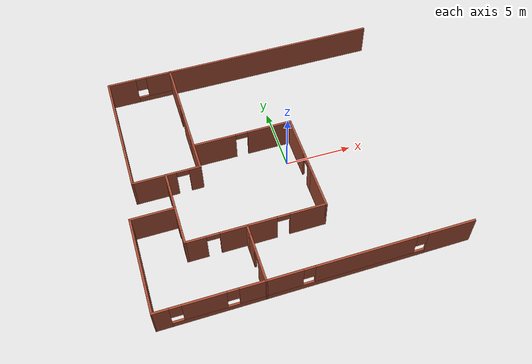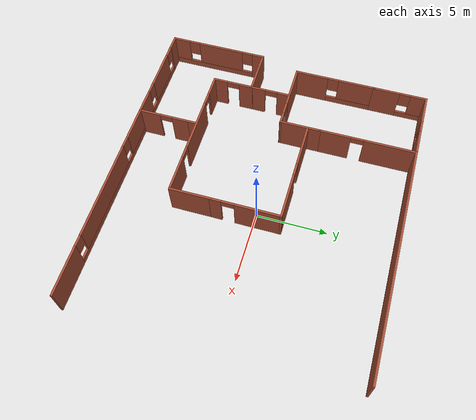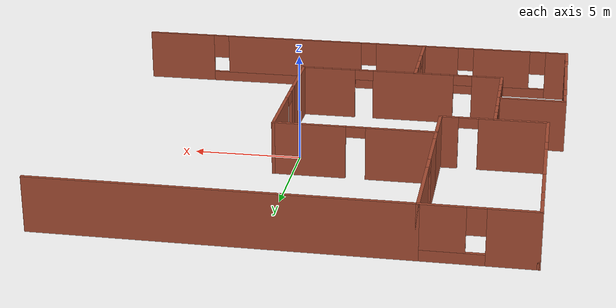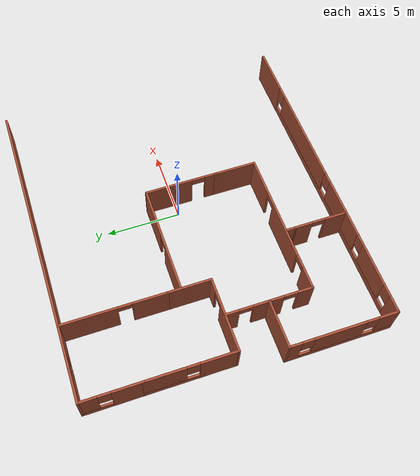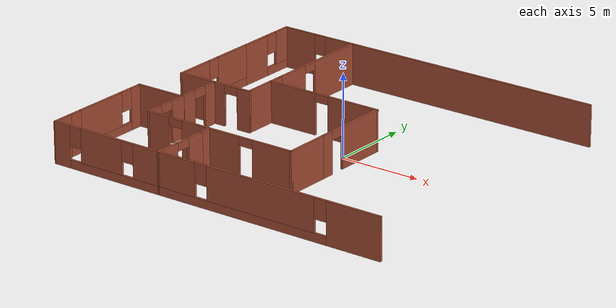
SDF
<sdf version="1.6">
 <model name="office">
  <pose>3.86148 -0.195271 0 0 -0 0</pose>
  <link name="Wall_0">
   <pose>-12.8016 9.8293 0 0 -0 1.2e-05</pose>
   <visual name="Wall_0_Visual_0">
    <pose>-1.40419 0 1.25 0 -0 0</pose>
    <geometry><box><size>2.19162 0.15 2.5</size></box></geometry>
    <material>
     <script><uri>file://media/materials/scripts/gazebo.material</uri><name>Gazebo/Bricks</name></script>
     <ambient>1 1 1 1</ambient>
    </material>
    <meta><layer>0</layer></meta>
   </visual>
   <collision name="Wall_0_Collision_0">
    <geometry><box><size>2.19162 0.15 2.5</size></box></geometry>
    <pose>-1.40419 0 1.25 0 -0 0</pose>
   </collision>
   <visual name="Wall_0_Visual_1">
    <pose>1.09581 0 0.25 0 -0 0</pose>
    <geometry><box><size>2.80838 0.15 0.5</size></box></geometry>
    <material>
     <script><uri>file://media/materials/scripts/gazebo.material</uri><name>Gazebo/Bricks</name></script>
     <ambient>1 1 1 1</ambient>
    </material>
    <meta><layer>0</layer></meta>
   </visual>
   <collision name="Wall_0_Collision_1">
    <geometry><box><size>2.80838 0.15 0.5</size></box></geometry>
    <pose>1.09581 0 0.25 0 -0 0</pose>
   </collision>
   <visual name="Wall_0_Visual_2">
    <pose>1.49581 0 1.5 0 -0 0</pose>
    <geometry><box><size>2.00839 0.15 2</size></box></geometry>
    <material>
     <script><uri>file://media/materials/scripts/gazebo.material</uri><name>Gazebo/Bricks</name></script>
     <ambient>1 1 1 1</ambient>
    </material>
    <meta><layer>0</layer></meta>
   </visual>
   <collision name="Wall_0_Collision_2">
    <geometry><box><size>2.00839 0.15 2</size></box></geometry>
    <pose>1.49581 0 1.5 0 -0 0</pose>
   </collision>
   <visual name="Wall_0_Visual_3">
    <pose>0.091615 0 1.9 0 -0 0</pose>
    <geometry><box><size>0.8 0.15 1.2</size></box></geometry>
    <material>
     <script><uri>file://media/materials/scripts/gazebo.material</uri><name>Gazebo/Bricks</name></script>
     <ambient>1 1 1 1</ambient>
    </material>
    <meta><layer>0</layer></meta>
   </visual>
   <collision name="Wall_0_Collision_3">
    <geometry><box><size>0.8 0.15 1.2</size></box></geometry>
    <pose>0.091615 0 1.9 0 -0 0</pose>
   </collision>
  </link>
  <link name="Wall_1">
   <pose>-10.3767 6.40433 0 0 0 -1.5708</pose>
   <visual name="Wall_1_Visual_0">
    <pose>-1.61827 0 1.25 0 -0 0</pose>
    <geometry><box><size>3.76346 0.15 2.5</size></box></geometry>
    <material>
     <script><uri>file://media/materials/scripts/gazebo.material</uri><name>Gazebo/Bricks</name></script>
     <ambient>0 0 1 1</ambient>
    </material>
    <meta><layer>0</layer></meta>
   </visual>
   <collision name="Wall_1_Collision_0">
    <geometry><box><size>3.76346 0.15 2.5</size></box></geometry>
    <pose>-1.61827 0 1.25 0 -0 0</pose>
   </collision>
   <visual name="Wall_1_Visual_1">
    <pose>2.33173 0 1.25 0 -0 0</pose>
    <geometry><box><size>2.33654 0.15 2.5</size></box></geometry>
    <material>
     <script><uri>file://media/materials/scripts/gazebo.material</uri><name>Gazebo/Bricks</name></script>
     <ambient>0 0 1 1</ambient>
    </material>
    <meta><layer>0</layer></meta>
   </visual>
   <collision name="Wall_1_Collision_1">
    <geometry><box><size>2.33654 0.15 2.5</size></box></geometry>
    <pose>2.33173 0 1.25 0 -0 0</pose>
   </collision>
   <visual name="Wall_1_Visual_2">
    <pose>0.713457 0 2.25 0 -0 0</pose>
    <geometry><box><size>0.9 0.15 0.5</size></box></geometry>
    <material>
     <script><uri>file://media/materials/scripts/gazebo.material</uri><name>Gazebo/Bricks</name></script>
     <ambient>0 0 1 1</ambient>
    </material>
    <meta><layer>0</layer></meta>
   </visual>
   <collision name="Wall_1_Collision_2">
    <geometry><box><size>0.9 0.15 0.5</size></box></geometry>
    <pose>0.713457 0 2.25 0 -0 0</pose>
   </collision>
  </link>
  <link name="Wall_10">
   <collision name="Wall_10_Collision">
    <geometry><box><size>3 0.15 2.5</size></box></geometry>
    <pose>0 0 1.25 0 -0 0</pose>
   </collision>
   <visual name="Wall_10_Visual">
    <pose>0 0 1.25 0 -0 0</pose>
    <geometry><box><size>3 0.15 2.5</size></box></geometry>
    <material>
     <script><uri>file://media/materials/scripts/gazebo.material</uri><name>Gazebo/Bricks</name></script>
     <ambient>0 0 1 1</ambient>
    </material>
    <meta><layer>0</layer></meta>
   </visual>
   <pose>-3.00328 -4.16052 0 0 -0 1.5708</pose>
  </link>
  <link name="Wall_11">
   <pose>-3.00328 -0.310524 0 0 -0 1.5708</pose>
   <visual name="Wall_11_Visual_0">
    <pose>-2.09105 0 1.25 0 -0 0</pose>
    <geometry><box><size>0.817909 0.15 2.5</size></box></geometry>
    <material>
     <script><uri>file://media/materials/scripts/gazebo.material</uri><name>Gazebo/Bricks</name></script>
     <ambient>0 0 1 1</ambient>
    </material>
    <meta><layer>0</layer></meta>
   </visual>
   <collision name="Wall_11_Collision_0">
    <geometry><box><size>0.817909 0.15 2.5</size></box></geometry>
    <pose>-2.09105 0 1.25 0 -0 0</pose>
   </collision>
   <visual name="Wall_11_Visual_1">
    <pose>0.858954 0 1.25 0 -0 0</pose>
    <geometry><box><size>3.28209 0.15 2.5</size></box></geometry>
    <material>
     <script><uri>file://media/materials/scripts/gazebo.material</uri><name>Gazebo/Bricks</name></script>
     <ambient>0 0 1 1</ambient>
    </material>
    <meta><layer>0</layer></meta>
   </visual>
   <collision name="Wall_11_Collision_1">
    <geometry><box><size>3.28209 0.15 2.5</size></box></geometry>
    <pose>0.858954 0 1.25 0 -0 0</pose>
   </collision>
   <visual name="Wall_11_Visual_2">
    <pose>-1.23209 0 2.25 0 -0 0</pose>
    <geometry><box><size>0.9 0.15 0.5</size></box></geometry>
    <material>
     <script><uri>file://media/materials/scripts/gazebo.material</uri><name>Gazebo/Bricks</name></script>
     <ambient>0 0 1 1</ambient>
    </material>
    <meta><layer>0</layer></meta>
   </visual>
   <collision name="Wall_11_Collision_2">
    <geometry><box><size>0.9 0.15 0.5</size></box></geometry>
    <pose>-1.23209 0 2.25 0 -0 0</pose>
   </collision>
  </link>
  <link name="Wall_12">
   <pose>-6.67828 2.11448 0 0 -0 3.14159</pose>
   <visual name="Wall_12_Visual_0">
    <pose>-2.05802 0 1.25 0 -0 0</pose>
    <geometry><box><size>3.38397 0.15 2.5</size></box></geometry>
    <material>
     <script><uri>file://media/materials/scripts/gazebo.material</uri><name>Gazebo/Bricks</name></script>
     <ambient>0 0 1 1</ambient>
    </material>
    <meta><layer>0</layer></meta>
   </visual>
   <collision name="Wall_12_Collision_0">
    <geometry><box><size>3.38397 0.15 2.5</size></box></geometry>
    <pose>-2.05802 0 1.25 0 -0 0</pose>
   </collision>
   <visual name="Wall_12_Visual_1">
    <pose>2.14199 0 1.25 0 -0 0</pose>
    <geometry><box><size>3.21603 0.15 2.5</size></box></geometry>
    <material>
     <script><uri>file://media/materials/scripts/gazebo.material</uri><name>Gazebo/Bricks</name></script>
     <ambient>0 0 1 1</ambient>
    </material>
    <meta><layer>0</layer></meta>
   </visual>
   <collision name="Wall_12_Collision_1">
    <geometry><box><size>3.21603 0.15 2.5</size></box></geometry>
    <pose>2.14199 0 1.25 0 -0 0</pose>
   </collision>
   <visual name="Wall_12_Visual_2">
    <pose>0.083969 0 2.25 0 -0 0</pose>
    <geometry><box><size>0.9 0.15 0.5</size></box></geometry>
    <material>
     <script><uri>file://media/materials/scripts/gazebo.material</uri><name>Gazebo/Bricks</name></script>
     <ambient>0 0 1 1</ambient>
    </material>
    <meta><layer>0</layer></meta>
   </visual>
   <collision name="Wall_12_Collision_2">
    <geometry><box><size>0.9 0.15 0.5</size></box></geometry>
    <pose>0.083969 0 2.25 0 -0 0</pose>
   </collision>
  </link>
  <link name="Wall_14">
   <collision name="Wall_14_Collision">
    <geometry><box><size>16.5 0.15 2.5</size></box></geometry>
    <pose>0 0 1.25 0 -0 0</pose>
   </collision>
   <visual name="Wall_14_Visual">
    <pose>0 0 1.25 0 -0 0</pose>
    <geometry><box><size>16.5 0.15 2.5</size></box></geometry>
    <material>
     <script><uri>file://media/materials/scripts/gazebo.material</uri><name>Gazebo/Bricks</name></script>
     <ambient>1 1 1 1</ambient>
    </material>
    <meta><layer>0</layer></meta>
   </visual>
   <pose>-2.20168 9.82933 0 0 -0 0</pose>
  </link>
  <link name="Wall_2">
   <collision name="Wall_2_Collision">
    <geometry><box><size>3 0.15 2.5</size></box></geometry>
    <pose>0 0 1.25 0 -0 0</pose>
   </collision>
   <visual name="Wall_2_Visual">
    <pose>0 0 1.25 0 -0 0</pose>
    <geometry><box><size>3 0.15 2.5</size></box></geometry>
    <material>
     <script><uri>file://media/materials/scripts/gazebo.material</uri><name>Gazebo/Bricks</name></script>
     <ambient>0 0 1 1</ambient>
    </material>
    <meta><layer>0</layer></meta>
   </visual>
   <pose>-10.3766 1.5543 0 0 0 -1.57073</pose>
  </link>
  <link name="Wall_24">
   <pose>-1.30648 -9.85573 0 0 -0 3.14159</pose>
   <visual name="Wall_24_Visual_0">
    <pose>-5.65269 0 1.25 0 -0 0</pose>
    <geometry><box><size>3.44462 0.15 2.5</size></box></geometry>
    <material>
     <script><uri>file://media/materials/scripts/gazebo.material</uri><name>Gazebo/Bricks</name></script>
     <ambient>1 1 1 1</ambient>
    </material>
    <meta><layer>0</layer></meta>
   </visual>
   <collision name="Wall_24_Collision_0">
    <geometry><box><size>3.44462 0.15 2.5</size></box></geometry>
    <pose>-5.65269 0 1.25 0 -0 0</pose>
   </collision>
   <visual name="Wall_24_Visual_1">
    <pose>1.72231 0 0.25 0 -0 0</pose>
    <geometry><box><size>11.3054 0.15 0.5</size></box></geometry>
    <material>
     <script><uri>file://media/materials/scripts/gazebo.material</uri><name>Gazebo/Bricks</name></script>
     <ambient>1 1 1 1</ambient>
    </material>
    <meta><layer>0</layer></meta>
   </visual>
   <collision name="Wall_24_Collision_1">
    <geometry><box><size>11.3054 0.15 0.5</size></box></geometry>
    <pose>1.72231 0 0.25 0 -0 0</pose>
   </collision>
   <visual name="Wall_24_Visual_2">
    <pose>0.432018 0 1.5 0 -0 0</pose>
    <geometry><box><size>7.12479 0.15 2</size></box></geometry>
    <material>
     <script><uri>file://media/materials/scripts/gazebo.material</uri><name>Gazebo/Bricks</name></script>
     <ambient>1 1 1 1</ambient>
    </material>
    <meta><layer>0</layer></meta>
   </visual>
   <collision name="Wall_24_Collision_2">
    <geometry><box><size>7.12479 0.15 2</size></box></geometry>
    <pose>0.432018 0 1.5 0 -0 0</pose>
   </collision>
   <visual name="Wall_24_Visual_3">
    <pose>6.08471 0 1.5 0 -0 0</pose>
    <geometry><box><size>2.58059 0.15 2</size></box></geometry>
    <material>
     <script><uri>file://media/materials/scripts/gazebo.material</uri><name>Gazebo/Bricks</name></script>
     <ambient>1 1 1 1</ambient>
    </material>
    <meta><layer>0</layer></meta>
   </visual>
   <collision name="Wall_24_Collision_3">
    <geometry><box><size>2.58059 0.15 2</size></box></geometry>
    <pose>6.08471 0 1.5 0 -0 0</pose>
   </collision>
   <visual name="Wall_24_Visual_4">
    <pose>-3.53038 0 1.9 0 -0 0</pose>
    <geometry><box><size>0.8 0.15 1.2</size></box></geometry>
    <material>
     <script><uri>file://media/materials/scripts/gazebo.material</uri><name>Gazebo/Bricks</name></script>
     <ambient>1 1 1 1</ambient>
    </material>
    <meta><layer>0</layer></meta>
   </visual>
   <collision name="Wall_24_Collision_4">
    <geometry><box><size>0.8 0.15 1.2</size></box></geometry>
    <pose>-3.53038 0 1.9 0 -0 0</pose>
   </collision>
   <visual name="Wall_24_Visual_5">
    <pose>4.39441 0 1.9 0 -0 0</pose>
    <geometry><box><size>0.8 0.15 1.2</size></box></geometry>
    <material>
     <script><uri>file://media/materials/scripts/gazebo.material</uri><name>Gazebo/Bricks</name></script>
     <ambient>1 1 1 1</ambient>
    </material>
    <meta><layer>0</layer></meta>
   </visual>
   <collision name="Wall_24_Collision_5">
    <geometry><box><size>0.8 0.15 1.2</size></box></geometry>
    <pose>4.39441 0 1.9 0 -0 0</pose>
   </collision>
  </link>
  <link name="Wall_25">
   <pose>-8.60667 -8.05568 0 0 -0 1.5709</pose>
   <visual name="Wall_25_Visual_0">
    <pose>-1.07228 0 1.25 0 -0 0</pose>
    <geometry><box><size>1.60545 0.15 2.5</size></box></geometry>
    <material>
     <script><uri>file://media/materials/scripts/gazebo.material</uri><name>Gazebo/Bricks</name></script>
     <ambient>1 1 1 1</ambient>
    </material>
    <meta><layer>0</layer></meta>
   </visual>
   <collision name="Wall_25_Collision_0">
    <geometry><box><size>1.60545 0.15 2.5</size></box></geometry>
    <pose>-1.07228 0 1.25 0 -0 0</pose>
   </collision>
   <visual name="Wall_25_Visual_1">
    <pose>1.25273 0 1.25 0 -0 0</pose>
    <geometry><box><size>1.24455 0.15 2.5</size></box></geometry>
    <material>
     <script><uri>file://media/materials/scripts/gazebo.material</uri><name>Gazebo/Bricks</name></script>
     <ambient>1 1 1 1</ambient>
    </material>
    <meta><layer>0</layer></meta>
   </visual>
   <collision name="Wall_25_Collision_1">
    <geometry><box><size>1.24455 0.15 2.5</size></box></geometry>
    <pose>1.25273 0 1.25 0 -0 0</pose>
   </collision>
   <visual name="Wall_25_Visual_2">
    <pose>0.18045 0 2.25 0 -0 0</pose>
    <geometry><box><size>0.9 0.15 0.5</size></box></geometry>
    <material>
     <script><uri>file://media/materials/scripts/gazebo.material</uri><name>Gazebo/Bricks</name></script>
     <ambient>1 1 1 1</ambient>
    </material>
    <meta><layer>0</layer></meta>
   </visual>
   <collision name="Wall_25_Collision_2">
    <geometry><box><size>0.9 0.15 0.5</size></box></geometry>
    <pose>0.18045 0 2.25 0 -0 0</pose>
   </collision>
  </link>
  <link name="Wall_26">
   <collision name="Wall_26_Collision">
    <geometry><box><size>0.75 0.15 2.5</size></box></geometry>
    <pose>0 0 1.25 0 -0 0</pose>
   </collision>
   <visual name="Wall_26_Visual">
    <pose>0 0 1.25 0 -0 0</pose>
    <geometry><box><size>0.75 0.15 2.5</size></box></geometry>
    <material>
     <script><uri>file://media/materials/scripts/gazebo.material</uri><name>Gazebo/Bricks</name></script>
     <ambient>1 1 1 1</ambient>
    </material>
    <meta><layer>0</layer></meta>
   </visual>
   <pose>-8.60686 -5.95564 0 0 -0 1.5708</pose>
  </link>
  <link name="Wall_28">
   <collision name="Wall_28_Collision">
    <geometry><box><size>3.25 0.15 2.5</size></box></geometry>
    <pose>0 0 1.25 0 -0 0</pose>
   </collision>
   <visual name="Wall_28_Visual">
    <pose>0 0 1.25 0 -0 0</pose>
    <geometry><box><size>3.25 0.15 2.5</size></box></geometry>
    <material>
     <script><uri>file://media/materials/scripts/gazebo.material</uri><name>Gazebo/Bricks</name></script>
     <ambient>1 1 1 1</ambient>
    </material>
    <meta><layer>0</layer></meta>
   </visual>
   <pose>-14.4035 -2.73573 0 0 -0 3.14159</pose>
  </link>
  <link name="Wall_29">
   <pose>-15.9535 -6.28573 0 0 0 -1.5708</pose>
   <visual name="Wall_29_Visual_0">
    <pose>-3.17286 0 1.25 0 -0 0</pose>
    <geometry><box><size>0.904269 0.15 2.5</size></box></geometry>
    <material>
     <script><uri>file://media/materials/scripts/gazebo.material</uri><name>Gazebo/Bricks</name></script>
     <ambient>1 1 1 1</ambient>
    </material>
    <meta><layer>0</layer></meta>
   </visual>
   <collision name="Wall_29_Collision_0">
    <geometry><box><size>0.904269 0.15 2.5</size></box></geometry>
    <pose>-3.17286 0 1.25 0 -0 0</pose>
   </collision>
   <visual name="Wall_29_Visual_1">
    <pose>0.452135 0 0.25 0 -0 0</pose>
    <geometry><box><size>6.34573 0.15 0.5</size></box></geometry>
    <material>
     <script><uri>file://media/materials/scripts/gazebo.material</uri><name>Gazebo/Bricks</name></script>
     <ambient>1 1 1 1</ambient>
    </material>
    <meta><layer>0</layer></meta>
   </visual>
   <collision name="Wall_29_Collision_1">
    <geometry><box><size>6.34573 0.15 0.5</size></box></geometry>
    <pose>0.452135 0 0.25 0 -0 0</pose>
   </collision>
   <visual name="Wall_29_Visual_2">
    <pose>-0.206015 0 1.5 0 -0 0</pose>
    <geometry><box><size>3.42943 0.15 2</size></box></geometry>
    <material>
     <script><uri>file://media/materials/scripts/gazebo.material</uri><name>Gazebo/Bricks</name></script>
     <ambient>1 1 1 1</ambient>
    </material>
    <meta><layer>0</layer></meta>
   </visual>
   <collision name="Wall_29_Collision_2">
    <geometry><box><size>3.42943 0.15 2</size></box></geometry>
    <pose>-0.206015 0 1.5 0 -0 0</pose>
   </collision>
   <visual name="Wall_29_Visual_3">
    <pose>2.96685 0 1.5 0 -0 0</pose>
    <geometry><box><size>1.3163 0.15 2</size></box></geometry>
    <material>
     <script><uri>file://media/materials/scripts/gazebo.material</uri><name>Gazebo/Bricks</name></script>
     <ambient>1 1 1 1</ambient>
    </material>
    <meta><layer>0</layer></meta>
   </visual>
   <collision name="Wall_29_Collision_3">
    <geometry><box><size>1.3163 0.15 2</size></box></geometry>
    <pose>2.96685 0 1.5 0 -0 0</pose>
   </collision>
   <visual name="Wall_29_Visual_4">
    <pose>-2.32073 0 1.9 0 -0 0</pose>
    <geometry><box><size>0.8 0.15 1.2</size></box></geometry>
    <material>
     <script><uri>file://media/materials/scripts/gazebo.material</uri><name>Gazebo/Bricks</name></script>
     <ambient>1 1 1 1</ambient>
    </material>
    <meta><layer>0</layer></meta>
   </visual>
   <collision name="Wall_29_Collision_4">
    <geometry><box><size>0.8 0.15 1.2</size></box></geometry>
    <pose>-2.32073 0 1.9 0 -0 0</pose>
   </collision>
   <visual name="Wall_29_Visual_5">
    <pose>1.9087 0 1.9 0 -0 0</pose>
    <geometry><box><size>0.8 0.15 1.2</size></box></geometry>
    <material>
     <script><uri>file://media/materials/scripts/gazebo.material</uri><name>Gazebo/Bricks</name></script>
     <ambient>1 1 1 1</ambient>
    </material>
    <meta><layer>0</layer></meta>
   </visual>
   <collision name="Wall_29_Collision_5">
    <geometry><box><size>0.8 0.15 1.2</size></box></geometry>
    <pose>1.9087 0 1.9 0 -0 0</pose>
   </collision>
  </link>
  <link name="Wall_3">
   <pose>-12.8015 0.129271 0 0 -0 3.14159</pose>
   <visual name="Wall_3_Visual_0">
    <pose>-2.04673 0 1.25 0 -0 0</pose>
    <geometry><box><size>0.906536 0.15 2.5</size></box></geometry>
    <material>
     <script><uri>file://media/materials/scripts/gazebo.material</uri><name>Gazebo/Bricks</name></script>
     <ambient>1 1 1 1</ambient>
    </material>
    <meta><layer>0</layer></meta>
   </visual>
   <collision name="Wall_3_Collision_0">
    <geometry><box><size>0.906536 0.15 2.5</size></box></geometry>
    <pose>-2.04673 0 1.25 0 -0 0</pose>
   </collision>
   <visual name="Wall_3_Visual_1">
    <pose>0.903268 0 1.25 0 -0 0</pose>
    <geometry><box><size>3.19346 0.15 2.5</size></box></geometry>
    <material>
     <script><uri>file://media/materials/scripts/gazebo.material</uri><name>Gazebo/Bricks</name></script>
     <ambient>1 1 1 1</ambient>
    </material>
    <meta><layer>0</layer></meta>
   </visual>
   <collision name="Wall_3_Collision_1">
    <geometry><box><size>3.19346 0.15 2.5</size></box></geometry>
    <pose>0.903268 0 1.25 0 -0 0</pose>
   </collision>
   <visual name="Wall_3_Visual_2">
    <pose>-1.14346 0 2.25 0 -0 0</pose>
    <geometry><box><size>0.9 0.15 0.5</size></box></geometry>
    <material>
     <script><uri>file://media/materials/scripts/gazebo.material</uri><name>Gazebo/Bricks</name></script>
     <ambient>1 1 1 1</ambient>
    </material>
    <meta><layer>0</layer></meta>
   </visual>
   <collision name="Wall_3_Collision_2">
    <geometry><box><size>0.9 0.15 0.5</size></box></geometry>
    <pose>-1.14346 0 2.25 0 -0 0</pose>
   </collision>
  </link>
  <link name="Wall_30">
   <pose>-12.28 -9.84573 0 0 0 -0.002722</pose>
   <visual name="Wall_30_Visual_0">
    <pose>-3.1768 0 1.25 0 -0 0</pose>
    <geometry><box><size>1.14285 0.15 2.5</size></box></geometry>
    <material>
     <script><uri>file://media/materials/scripts/gazebo.material</uri><name>Gazebo/Bricks</name></script>
     <ambient>1 1 1 1</ambient>
    </material>
    <meta><layer>0</layer></meta>
   </visual>
   <collision name="Wall_30_Collision_0">
    <geometry><box><size>1.14285 0.15 2.5</size></box></geometry>
    <pose>-3.1768 0 1.25 0 -0 0</pose>
   </collision>
   <visual name="Wall_30_Visual_1">
    <pose>0.571426 0 0.25 0 -0 0</pose>
    <geometry><box><size>6.35359 0.15 0.5</size></box></geometry>
    <material>
     <script><uri>file://media/materials/scripts/gazebo.material</uri><name>Gazebo/Bricks</name></script>
     <ambient>1 1 1 1</ambient>
    </material>
    <meta><layer>0</layer></meta>
   </visual>
   <collision name="Wall_30_Collision_1">
    <geometry><box><size>6.35359 0.15 0.5</size></box></geometry>
    <pose>0.571426 0 0.25 0 -0 0</pose>
   </collision>
   <visual name="Wall_30_Visual_2">
    <pose>-0.356663 0 1.5 0 -0 0</pose>
    <geometry><box><size>2.89741 0.15 2</size></box></geometry>
    <material>
     <script><uri>file://media/materials/scripts/gazebo.material</uri><name>Gazebo/Bricks</name></script>
     <ambient>1 1 1 1</ambient>
    </material>
    <meta><layer>0</layer></meta>
   </visual>
   <collision name="Wall_30_Collision_2">
    <geometry><box><size>2.89741 0.15 2</size></box></geometry>
    <pose>-0.356663 0 1.5 0 -0 0</pose>
   </collision>
   <visual name="Wall_30_Visual_3">
    <pose>2.82013 0 1.5 0 -0 0</pose>
    <geometry><box><size>1.85618 0.15 2</size></box></geometry>
    <material>
     <script><uri>file://media/materials/scripts/gazebo.material</uri><name>Gazebo/Bricks</name></script>
     <ambient>1 1 1 1</ambient>
    </material>
    <meta><layer>0</layer></meta>
   </visual>
   <collision name="Wall_30_Collision_3">
    <geometry><box><size>1.85618 0.15 2</size></box></geometry>
    <pose>2.82013 0 1.5 0 -0 0</pose>
   </collision>
   <visual name="Wall_30_Visual_4">
    <pose>-2.20537 0 1.9 0 -0 0</pose>
    <geometry><box><size>0.8 0.15 1.2</size></box></geometry>
    <material>
     <script><uri>file://media/materials/scripts/gazebo.material</uri><name>Gazebo/Bricks</name></script>
     <ambient>1 1 1 1</ambient>
    </material>
    <meta><layer>0</layer></meta>
   </visual>
   <collision name="Wall_30_Collision_4">
    <geometry><box><size>0.8 0.15 1.2</size></box></geometry>
    <pose>-2.20537 0 1.9 0 -0 0</pose>
   </collision>
   <visual name="Wall_30_Visual_5">
    <pose>1.49204 0 1.9 0 -0 0</pose>
    <geometry><box><size>0.8 0.15 1.2</size></box></geometry>
    <material>
     <script><uri>file://media/materials/scripts/gazebo.material</uri><name>Gazebo/Bricks</name></script>
     <ambient>1 1 1 1</ambient>
    </material>
    <meta><layer>0</layer></meta>
   </visual>
   <collision name="Wall_30_Collision_5">
    <geometry><box><size>0.8 0.15 1.2</size></box></geometry>
    <pose>1.49204 0 1.9 0 -0 0</pose>
   </collision>
  </link>
  <link name="Wall_4">
   <pose>-15.2265 3.05427 0 0 -0 1.5708</pose>
   <visual name="Wall_4_Visual_0">
    <pose>-1.76494 0 1.25 0 -0 0</pose>
    <geometry><box><size>2.47012 0.15 2.5</size></box></geometry>
    <material>
     <script><uri>file://media/materials/scripts/gazebo.material</uri><name>Gazebo/Bricks</name></script>
     <ambient>1 1 1 1</ambient>
    </material>
    <meta><layer>0</layer></meta>
   </visual>
   <collision name="Wall_4_Collision_0">
    <geometry><box><size>2.47012 0.15 2.5</size></box></geometry>
    <pose>-1.76494 0 1.25 0 -0 0</pose>
   </collision>
   <visual name="Wall_4_Visual_1">
    <pose>1.23506 0 0.25 0 -0 0</pose>
    <geometry><box><size>3.52988 0.15 0.5</size></box></geometry>
    <material>
     <script><uri>file://media/materials/scripts/gazebo.material</uri><name>Gazebo/Bricks</name></script>
     <ambient>1 1 1 1</ambient>
    </material>
    <meta><layer>0</layer></meta>
   </visual>
   <collision name="Wall_4_Collision_1">
    <geometry><box><size>3.52988 0.15 0.5</size></box></geometry>
    <pose>1.23506 0 0.25 0 -0 0</pose>
   </collision>
   <visual name="Wall_4_Visual_2">
    <pose>1.63506 0 1.5 0 -0 0</pose>
    <geometry><box><size>2.72988 0.15 2</size></box></geometry>
    <material>
     <script><uri>file://media/materials/scripts/gazebo.material</uri><name>Gazebo/Bricks</name></script>
     <ambient>1 1 1 1</ambient>
    </material>
    <meta><layer>0</layer></meta>
   </visual>
   <collision name="Wall_4_Collision_2">
    <geometry><box><size>2.72988 0.15 2</size></box></geometry>
    <pose>1.63506 0 1.5 0 -0 0</pose>
   </collision>
   <visual name="Wall_4_Visual_3">
    <pose>-0.129878 0 1.9 0 -0 0</pose>
    <geometry><box><size>0.8 0.15 1.2</size></box></geometry>
    <material>
     <script><uri>file://media/materials/scripts/gazebo.material</uri><name>Gazebo/Bricks</name></script>
     <ambient>1 1 1 1</ambient>
    </material>
    <meta><layer>0</layer></meta>
   </visual>
   <collision name="Wall_4_Collision_3">
    <geometry><box><size>0.8 0.15 1.2</size></box></geometry>
    <pose>-0.129878 0 1.9 0 -0 0</pose>
   </collision>
  </link>
  <link name="Wall_5">
   <pose>-15.2265 7.90427 0 0 -0 1.5708</pose>
   <visual name="Wall_5_Visual_0">
    <pose>-1.00332 0 1.25 0 -0 0</pose>
    <geometry><box><size>1.99336 0.15 2.5</size></box></geometry>
    <material>
     <script><uri>file://media/materials/scripts/gazebo.material</uri><name>Gazebo/Bricks</name></script>
     <ambient>1 1 1 1</ambient>
    </material>
    <meta><layer>0</layer></meta>
   </visual>
   <collision name="Wall_5_Collision_0">
    <geometry><box><size>1.99336 0.15 2.5</size></box></geometry>
    <pose>-1.00332 0 1.25 0 -0 0</pose>
   </collision>
   <visual name="Wall_5_Visual_1">
    <pose>0.996681 0 0.25 0 -0 0</pose>
    <geometry><box><size>2.00664 0.15 0.5</size></box></geometry>
    <material>
     <script><uri>file://media/materials/scripts/gazebo.material</uri><name>Gazebo/Bricks</name></script>
     <ambient>1 1 1 1</ambient>
    </material>
    <meta><layer>0</layer></meta>
   </visual>
   <collision name="Wall_5_Collision_1">
    <geometry><box><size>2.00664 0.15 0.5</size></box></geometry>
    <pose>0.996681 0 0.25 0 -0 0</pose>
   </collision>
   <visual name="Wall_5_Visual_2">
    <pose>1.39668 0 1.5 0 -0 0</pose>
    <geometry><box><size>1.20664 0.15 2</size></box></geometry>
    <material>
     <script><uri>file://media/materials/scripts/gazebo.material</uri><name>Gazebo/Bricks</name></script>
     <ambient>1 1 1 1</ambient>
    </material>
    <meta><layer>0</layer></meta>
   </visual>
   <collision name="Wall_5_Collision_2">
    <geometry><box><size>1.20664 0.15 2</size></box></geometry>
    <pose>1.39668 0 1.5 0 -0 0</pose>
   </collision>
   <visual name="Wall_5_Visual_3">
    <pose>0.393363 0 1.9 0 -0 0</pose>
    <geometry><box><size>0.8 0.15 1.2</size></box></geometry>
    <material>
     <script><uri>file://media/materials/scripts/gazebo.material</uri><name>Gazebo/Bricks</name></script>
     <ambient>1 1 1 1</ambient>
    </material>
    <meta><layer>0</layer></meta>
   </visual>
   <collision name="Wall_5_Collision_3">
    <geometry><box><size>0.8 0.15 1.2</size></box></geometry>
    <pose>0.393363 0 1.9 0 -0 0</pose>
   </collision>
  </link>
  <link name="Wall_7">
   <pose>-12.8535 -1.31073 0 0 0 -1.5708</pose>
   <visual name="Wall_7_Visual_0">
    <pose>-1.01235 0 1.25 0 -0 0</pose>
    <geometry><box><size>0.975305 0.15 2.5</size></box></geometry>
    <material>
     <script><uri>file://media/materials/scripts/gazebo.material</uri><name>Gazebo/Bricks</name></script>
     <ambient>1 1 1 1</ambient>
    </material>
    <meta><layer>0</layer></meta>
   </visual>
   <collision name="Wall_7_Collision_0">
    <geometry><box><size>0.975305 0.15 2.5</size></box></geometry>
    <pose>-1.01235 0 1.25 0 -0 0</pose>
   </collision>
   <visual name="Wall_7_Visual_1">
    <pose>0.937652 0 1.25 0 -0 0</pose>
    <geometry><box><size>1.1247 0.15 2.5</size></box></geometry>
    <material>
     <script><uri>file://media/materials/scripts/gazebo.material</uri><name>Gazebo/Bricks</name></script>
     <ambient>1 1 1 1</ambient>
    </material>
    <meta><layer>0</layer></meta>
   </visual>
   <collision name="Wall_7_Collision_1">
    <geometry><box><size>1.1247 0.15 2.5</size></box></geometry>
    <pose>0.937652 0 1.25 0 -0 0</pose>
   </collision>
   <visual name="Wall_7_Visual_2">
    <pose>-0.074695 0 2.25 0 -0 0</pose>
    <geometry><box><size>0.9 0.15 0.5</size></box></geometry>
    <material>
     <script><uri>file://media/materials/scripts/gazebo.material</uri><name>Gazebo/Bricks</name></script>
     <ambient>1 1 1 1</ambient>
    </material>
    <meta><layer>0</layer></meta>
   </visual>
   <collision name="Wall_7_Collision_2">
    <geometry><box><size>0.9 0.15 0.5</size></box></geometry>
    <pose>-0.074695 0 2.25 0 -0 0</pose>
   </collision>
  </link>
  <link name="Wall_8">
   <pose>-12.8534 -4.16063 0 0 0 -1.57073</pose>
   <visual name="Wall_8_Visual_0">
    <pose>-0.979716 0 1.25 0 -0 0</pose>
    <geometry><box><size>1.04057 0.15 2.5</size></box></geometry>
    <material>
     <script><uri>file://media/materials/scripts/gazebo.material</uri><name>Gazebo/Bricks</name></script>
     <ambient>1 1 1 1</ambient>
    </material>
    <meta><layer>0</layer></meta>
   </visual>
   <collision name="Wall_8_Collision_0">
    <geometry><box><size>1.04057 0.15 2.5</size></box></geometry>
    <pose>-0.979716 0 1.25 0 -0 0</pose>
   </collision>
   <visual name="Wall_8_Visual_1">
    <pose>0.970284 0 1.25 0 -0 0</pose>
    <geometry><box><size>1.05943 0.15 2.5</size></box></geometry>
    <material>
     <script><uri>file://media/materials/scripts/gazebo.material</uri><name>Gazebo/Bricks</name></script>
     <ambient>1 1 1 1</ambient>
    </material>
    <meta><layer>0</layer></meta>
   </visual>
   <collision name="Wall_8_Collision_1">
    <geometry><box><size>1.05943 0.15 2.5</size></box></geometry>
    <pose>0.970284 0 1.25 0 -0 0</pose>
   </collision>
   <visual name="Wall_8_Visual_2">
    <pose>-0.009431 0 2.25 0 -0 0</pose>
    <geometry><box><size>0.9 0.15 0.5</size></box></geometry>
    <material>
     <script><uri>file://media/materials/scripts/gazebo.material</uri><name>Gazebo/Bricks</name></script>
     <ambient>1 1 1 1</ambient>
    </material>
    <meta><layer>0</layer></meta>
   </visual>
   <collision name="Wall_8_Collision_2">
    <geometry><box><size>0.9 0.15 0.5</size></box></geometry>
    <pose>-0.009431 0 2.25 0 -0 0</pose>
   </collision>
  </link>
  <link name="Wall_9">
   <pose>-7.92828 -5.58552 0 0 -0 0</pose>
   <visual name="Wall_9_Visual_0">
    <pose>-4.23455 0 1.25 0 -0 0</pose>
    <geometry><box><size>1.5309 0.15 2.5</size></box></geometry>
    <material>
     <script><uri>file://media/materials/scripts/gazebo.material</uri><name>Gazebo/Bricks</name></script>
     <ambient>1 1 1 1</ambient>
    </material>
    <meta><layer>0</layer></meta>
   </visual>
   <collision name="Wall_9_Collision_0">
    <geometry><box><size>1.5309 0.15 2.5</size></box></geometry>
    <pose>-4.23455 0 1.25 0 -0 0</pose>
   </collision>
   <visual name="Wall_9_Visual_1">
    <pose>-0.57275 0 1.25 0 -0 0</pose>
    <geometry><box><size>3.9927 0.15 2.5</size></box></geometry>
    <material>
     <script><uri>file://media/materials/scripts/gazebo.material</uri><name>Gazebo/Bricks</name></script>
     <ambient>1 1 1 1</ambient>
    </material>
    <meta><layer>0</layer></meta>
   </visual>
   <collision name="Wall_9_Collision_1">
    <geometry><box><size>3.9927 0.15 2.5</size></box></geometry>
    <pose>-0.57275 0 1.25 0 -0 0</pose>
   </collision>
   <visual name="Wall_9_Visual_2">
    <pose>3.6618 0 1.25 0 -0 0</pose>
    <geometry><box><size>2.6764 0.15 2.5</size></box></geometry>
    <material>
     <script><uri>file://media/materials/scripts/gazebo.material</uri><name>Gazebo/Bricks</name></script>
     <ambient>1 1 1 1</ambient>
    </material>
    <meta><layer>0</layer></meta>
   </visual>
   <collision name="Wall_9_Collision_2">
    <geometry><box><size>2.6764 0.15 2.5</size></box></geometry>
    <pose>3.6618 0 1.25 0 -0 0</pose>
   </collision>
   <visual name="Wall_9_Visual_3">
    <pose>-3.0191 0 2.25 0 -0 0</pose>
    <geometry><box><size>0.9 0.15 0.5</size></box></geometry>
    <material>
     <script><uri>file://media/materials/scripts/gazebo.material</uri><name>Gazebo/Bricks</name></script>
     <ambient>1 1 1 1</ambient>
    </material>
    <meta><layer>0</layer></meta>
   </visual>
   <collision name="Wall_9_Collision_3">
    <geometry><box><size>0.9 0.15 0.5</size></box></geometry>
    <pose>-3.0191 0 2.25 0 -0 0</pose>
   </collision>
   <visual name="Wall_9_Visual_4">
    <pose>1.8736 0 2.25 0 -0 0</pose>
    <geometry><box><size>0.9 0.15 0.5</size></box></geometry>
    <material>
     <script><uri>file://media/materials/scripts/gazebo.material</uri><name>Gazebo/Bricks</name></script>
     <ambient>1 1 1 1</ambient>
    </material>
    <meta><layer>0</layer></meta>
   </visual>
   <collision name="Wall_9_Collision_4">
    <geometry><box><size>0.9 0.15 0.5</size></box></geometry>
    <pose>1.8736 0 2.25 0 -0 0</pose>
   </collision>
  </link>
  <static>1</static>
 </model>
</sdf>
